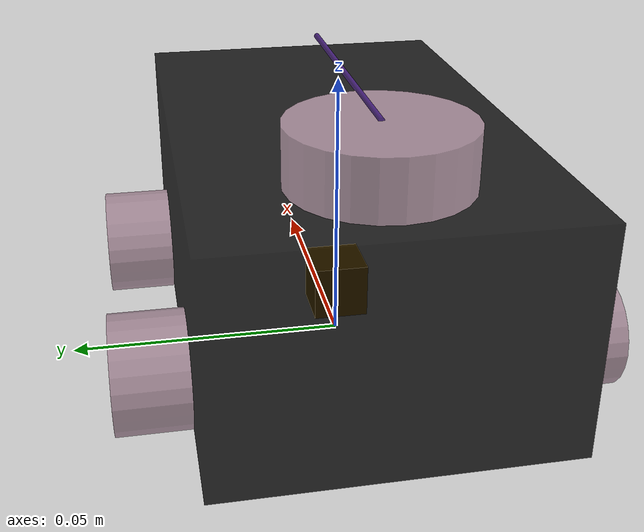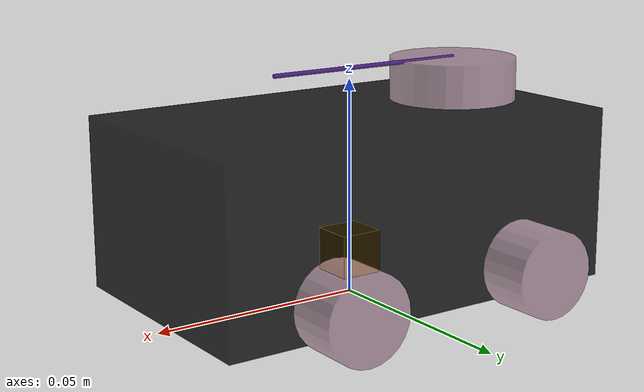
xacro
<?xml version="1.0" ?>
<robot xmlns:xacro="http://www.ros.org/wiki/xacro" name="micro_mouse">

    <!-- Reference Frame -->
    <link name="base_footprint"/>

    <!-- Chassis Frame -->
    <link name="base_link">
        <!-- Visual Representation in Sim -->
        <visual>
            <origin xyz="0 0 0.0125" rpy="0 0 0"/>
            <geometry>
                <box size="0.1 0.06 0.04"/>
            </geometry>
            <material name="black">
                <color rgba="0 0 0 0.8"/>
            </material>
        </visual>

        <!-- Collision Boundaries -->
        <collision>
            <origin xyz="0 0 0.0125" rpy="0 0 0"/>
            <geometry>
                <box size="0.10 0.06 0.04"/> <!-- Should be same as visual -->
            </geometry>
        </collision>

        <!-- Mass and Inertial Behavior -->
        <inertial>
            <mass value="0.2"/>
            <inertia ixx="0.0001" ixy="0.0" ixz="0.0" iyy="0.0001" iyz="0.0" izz="0.0001"/>
        </inertial>
    </link>

    <!-- Connection Between Base-link and Base-footprint-->
    <joint name="base_joint" type="fixed">
        <parent link="base_footprint"/>
        <child link="base_link"/>
        <origin xyz="0 0 0.01" rpy="0 0 0"/>
    </joint>

    <!-- Wheel Link Template -->
    <xacro:macro name="wheel" params="position x_reflect y_reflect">
        <!-- Link -->
        <link name="${position}_wheel">
            <visual>
                <geometry>
                    <cylinder radius="0.01" length="0.0125"/>
                </geometry>
                <material name="grey">
                    <color rgba="0.663 0.533 0.6 0.8"/>
                </material>
            </visual>

            <collision>
                <geometry>
                    <cylinder radius="0.01" length="0.0125"/>
                </geometry>
            </collision>

            <inertial>
                <mass value="0.02"/>
                <inertia ixx="0.000001" ixy="0.0" ixz="0.0" iyy="0.000001" iyz="0.0" izz="0.000001"/>
            </inertial>
        </link>

        <!-- Joint -->
        <joint name="${position}_wheel_joint" type="continuous">
            <parent link="base_link"/>
            <child link="${position}_wheel"/>
            <origin xyz="${x_reflect * 0.025} ${y_reflect * 0.03625} 0" rpy="-1.5708 0 0"/>
            <axis xyz="0 0 1"/>
        </joint>
    </xacro:macro>

    <!-- Wheels (Links + Joints)-->
    <xacro:wheel position="front_left"  x_reflect="1"  y_reflect="1" />
    <xacro:wheel position="front_right" x_reflect="1"  y_reflect="-1" />
    <xacro:wheel position="rear_left"   x_reflect="-1" y_reflect="1" />
    <xacro:wheel position="rear_right"  x_reflect="-1" y_reflect="-1" />

    <!-- Gazebo Simulation Logic -->
    <gazebo>
        <!-- Enable Differential Drive -->
        <plugin filename="ignition-gazebo-diff-drive-system" name="ignition::gazebo::systems::DiffDrive">
            <!-- Wheel Joints -->
            <left_joint>front_left_wheel_joint</left_joint>
            <right_joint>front_right_wheel_joint</right_joint>
            <left_joint>rear_left_wheel_joint</left_joint>
            <right_joint>rear_right_wheel_joint</right_joint>

            <!-- Kinematics -->
            <wheel_separation>0.08</wheel_separation> <!-- ~0.725 * 1.1 for realistic skid steering separation -->
            <wheel_radius>0.01</wheel_radius>

            <!-- Limits -->
            <max_linear_acceleration>1.0</max_linear_acceleration>

            <!-- Topic & Frames -->
            <topic>/cmd_vel</topic>
            <odom_topic>/odom</odom_topic>
            <publish_odom_tf>false</publish_odom_tf>
            <frame_id>odom</frame_id>
            <child_frame_id>base_footprint</child_frame_id>
        </plugin>

        <!-- Wheel Frame Transformations -->
        <plugin filename="gz-sim-joint-state-publisher-system" name="gz::sim::systems::JointStatePublisher">
            <topic>/wheel_joint_states</topic>
            <joint_name>front_left_wheel_joint</joint_name>
            <joint_name>front_right_wheel_joint</joint_name>
            <joint_name>rear_left_wheel_joint</joint_name>
            <joint_name>rear_right_wheel_joint</joint_name>
        </plugin>
    </gazebo>

    <!-- File Inclusions -->
    <xacro:include filename="lidar.xacro" /> <!-- Includes Lidar Capabilities -->
    <xacro:include filename="imu.xacro" />   <!-- Includes IMU Capabilities -->

</robot>

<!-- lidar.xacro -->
<robot xmlns:xacro="http://www.ros.org/wiki/xacro">

    <!-- Visual Laser Indicator -->
    <link name="laser_frame">
        <visual>
            <geometry>
                <cylinder radius="0.015" length="0.01"/>
            </geometry>
            <material name="grey">
                <color rgba="0.663 0.533 0.6 0.8"/>
            </material>
        </visual>
    </link>

    <link name="laser_visualizer">
        <visual>
            <geometry>
                <cylinder radius="0.0005" length="0.05"/>
            </geometry>
            <material name="magenta">
                <color rgba="0.197 0 0.47 0.8"/>
            </material>
        </visual>
    </link>

    <!-- Laser Location -->
    <joint name="laser_joint" type="fixed">
        <parent link="base_link"/>
        <child link="laser_frame"/>
        <origin xyz="-0.03 0 0.0375" rpy="0 0 0"/>
    </joint>

    <joint name="laser_visualizer_joint" type="fixed">
        <parent link="laser_frame"/>
        <child link="laser_visualizer"/>
        <origin xyz="0.025 0 0.005" rpy="0 1.5708 0"/>
    </joint>

    <!-- Enable Gazebo Interaction -->
    <gazebo reference="laser_frame">
        <material name="magenta">
            <color rgba="0.197 0 0.47 0.8"/>
        </material>

        <sensor name="gpu_lidar" type="gpu_lidar">
            <pose relative-to="laser_frame"> 0 0 0 0 0 0 </pose>
            <topic>scan</topic>
            <gz_frame_id>laser_frame</gz_frame_id>
            <update_rate>10</update_rate>
            <visualize>true</visualize>
            <always_on>1</always_on>
            <ray>
                <scan>
                    <horizontal>
                        <samples>360</samples>
                        <resolution>1</resolution>
                        <min_angle>-3.14159</min_angle>
                        <max_angle>3.14159</max_angle>
                    </horizontal>
                </scan>
                <range>
                    <min>0.02</min>
                    <max>2.0</max>
                    <resolution>0.01</resolution>
                </range>
            </ray>
        </sensor>
    </gazebo>

</robot>

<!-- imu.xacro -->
<robot xmlns:xacro="http://www.ros.org/wiki/xacro">

    <!-- Include IMU at robot origin -->
    <link name="imu_link">
        <visual>
            <geometry>
                <box size="0.01 0.01 0.01"/>
            </geometry>
        </visual>
    </link>

    <joint name="imu_joint" type="fixed">
        <parent link="base_link"/>
        <child link="imu_link"/>
        <origin xyz="0 0 0" rpy="0 0 0"/>
    </joint>

    <!-- Enable Gazebo Interaction -->
    <gazebo reference="imu_link">
        <sensor name="imu_sensor" type="imu">
            <always_on>1</always_on>
            <update_rate>100</update_rate>
            <visualize>false</visualize>
            <topic>imu</topic>
            <gz_frame_id>imu_link</gz_frame_id>

            <!-- Sensor Noise So Covariances are not 0 -->
            <imu>
                <orientation>
                    <x><noise type="gaussian"><mean>0.0</mean><stddev>2e-3</stddev></noise></x>
                    <y><noise type="gaussian"><mean>0.0</mean><stddev>2e-3</stddev></noise></y>
                    <z><noise type="gaussian"><mean>0.0</mean><stddev>2e-3</stddev></noise></z>
                </orientation>
                <angular_velocity>
                    <x><noise type="gaussian"><mean>0.0</mean><stddev>2e-4</stddev></noise></x>
                    <y><noise type="gaussian"><mean>0.0</mean><stddev>2e-4</stddev></noise></y>
                    <z><noise type="gaussian"><mean>0.0</mean><stddev>2e-4</stddev></noise></z>
                </angular_velocity>
                <linear_acceleration>
                    <x><noise type="gaussian"><mean>0.0</mean><stddev>1.7e-2</stddev></noise></x>
                    <y><noise type="gaussian"><mean>0.0</mean><stddev>1.7e-2</stddev></noise></y>
                    <z><noise type="gaussian"><mean>0.0</mean><stddev>1.7e-2</stddev></noise></z>
                </linear_acceleration>
            </imu>
        </sensor>
    </gazebo>

</robot>
